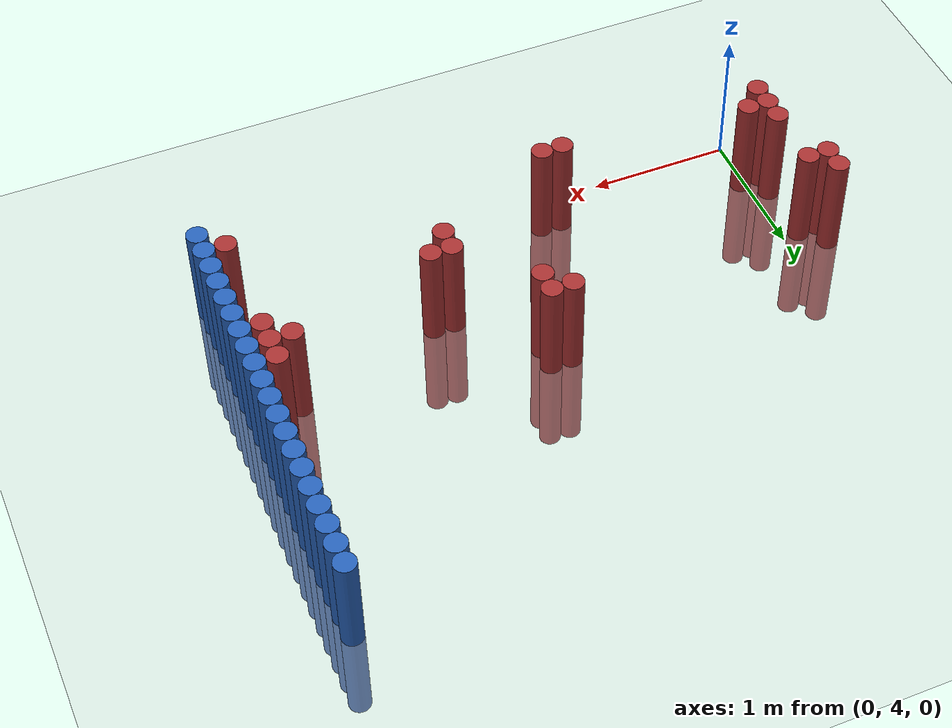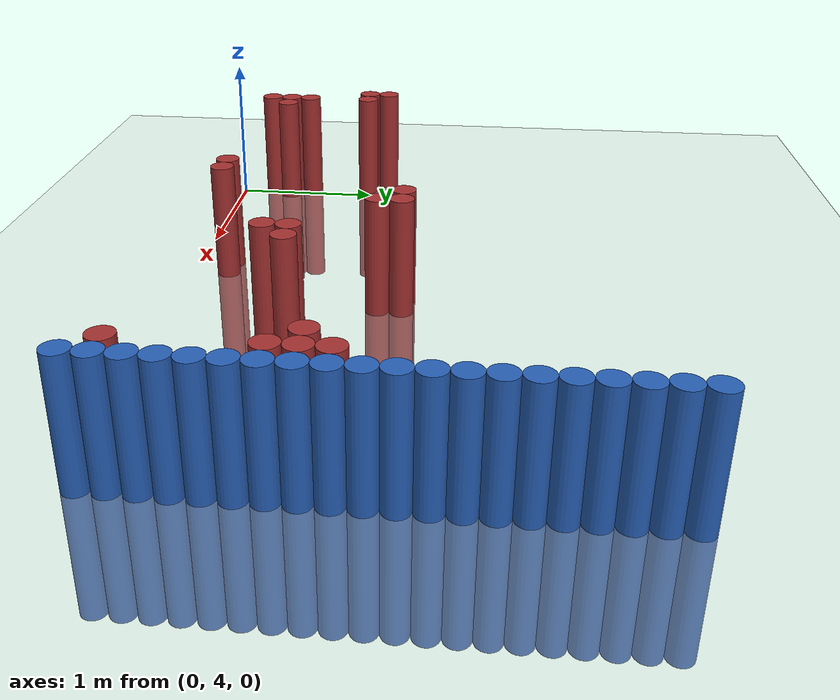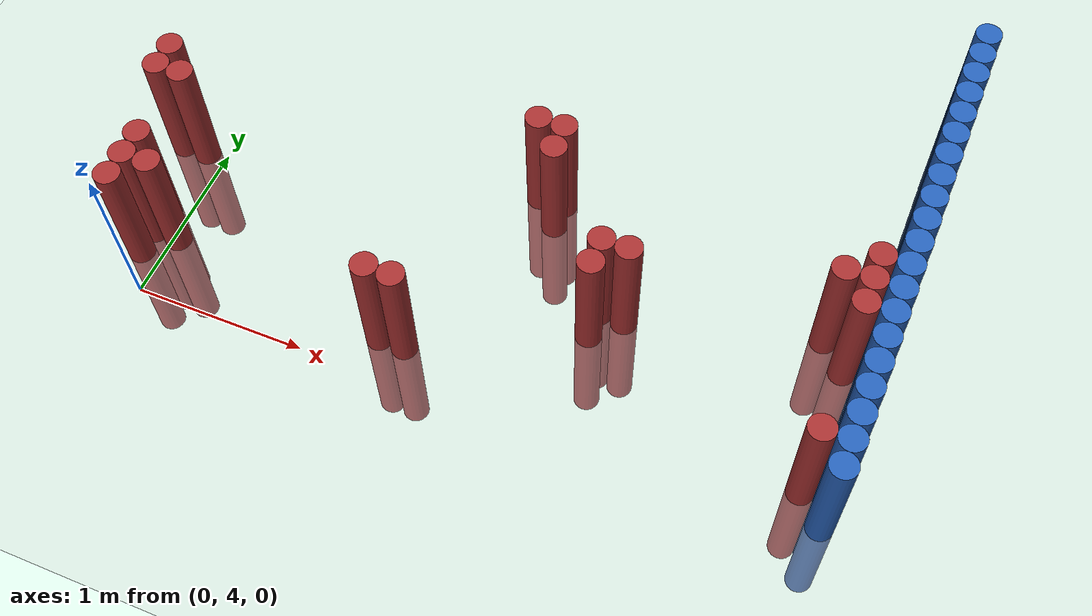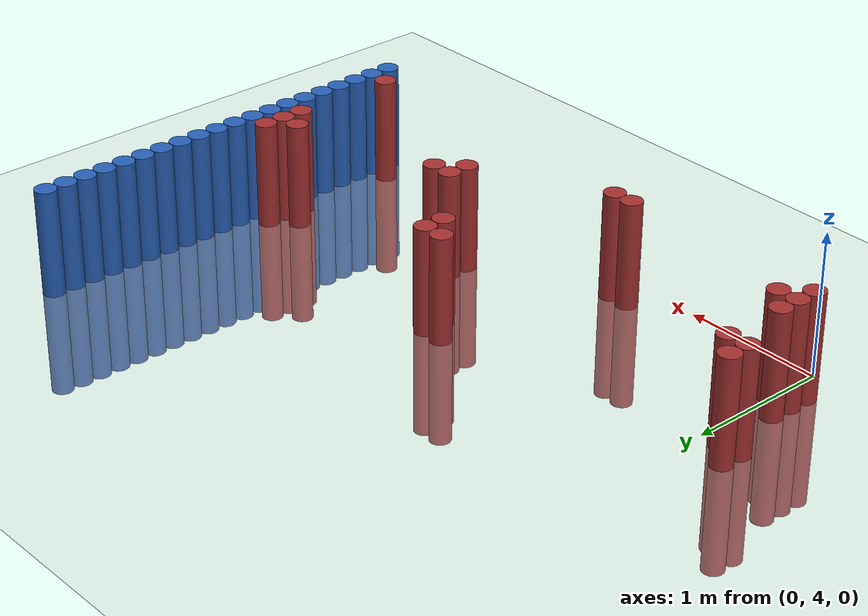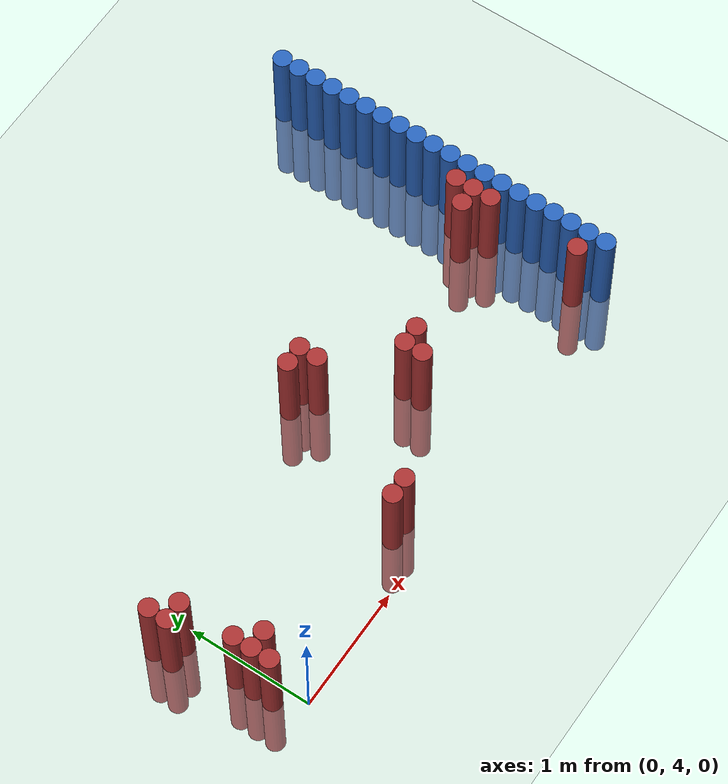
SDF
<sdf version="1.6">
 <world name="default">
  <model name="ground_plane">
   <static>1</static>
   <link name="link">
    <collision name="collision">
     <geometry><plane><normal>0 0 1</normal><size>100 100</size></plane></geometry>
     <surface><friction><ode><mu>100</mu><mu2>50</mu2></ode></friction></surface>
    </collision>
    <visual name="visual">
     <cast_shadows>0</cast_shadows>
     <geometry><plane><normal>0 0 1</normal><size>100 100</size></plane></geometry>
     <material>
      <script><uri>file://media/materials/scripts/gazebo.material</uri><name>Gazebo/Grey</name></script>
     </material>
    </visual>
   </link>
  </model>
  <model name="unit_cylinder_168">
   <static>1</static>
   <pose>3.925000 4.075000 0.000000 0.000000 0.000000 0.000000</pose>
   <link name="link">
    <inertial>
     <mass>1</mass>
     <inertia><ixx>0.145833</ixx><ixy>0</ixy><ixz>0</ixz><iyy>0.145833</iyy><iyz>0</iyz><izz>0.125</izz></inertia>
    </inertial>
    <collision name="collision">
     <geometry><cylinder><radius>0.075000</radius><length>1.5</length></cylinder></geometry>
    </collision>
    <visual name="visual">
     <geometry><cylinder><radius>0.075000</radius><length>1.5</length></cylinder></geometry>
     <material>
      <ambient>0.152000 0.379000 0.720000 1</ambient>
      <diffuse>0.152000 0.379000 0.720000 1</diffuse>
     </material>
     <material>
      <script><name>Gazebo/Grey</name><uri>file://media/materials/scripts/gazebo.material</uri></script>
     </material>
    </visual>
   </link>
  </model>
  <model name="unit_cylinder_170">
   <static>1</static>
   <pose>3.925000 4.225000 0.000000 0.000000 0.000000 0.000000</pose>
   <link name="link">
    <inertial>
     <mass>1</mass>
     <inertia><ixx>0.145833</ixx><ixy>0</ixy><ixz>0</ixz><iyy>0.145833</iyy><iyz>0</iyz><izz>0.125</izz></inertia>
    </inertial>
    <collision name="collision">
     <geometry><cylinder><radius>0.075000</radius><length>1.5</length></cylinder></geometry>
    </collision>
    <visual name="visual">
     <geometry><cylinder><radius>0.075000</radius><length>1.5</length></cylinder></geometry>
     <material>
      <ambient>0.152000 0.379000 0.720000 1</ambient>
      <diffuse>0.152000 0.379000 0.720000 1</diffuse>
     </material>
     <material>
      <script><name>Gazebo/Grey</name><uri>file://media/materials/scripts/gazebo.material</uri></script>
     </material>
    </visual>
   </link>
  </model>
  <model name="unit_cylinder_172">
   <static>1</static>
   <pose>3.925000 4.375000 0.000000 0.000000 0.000000 0.000000</pose>
   <link name="link">
    <inertial>
     <mass>1</mass>
     <inertia><ixx>0.145833</ixx><ixy>0</ixy><ixz>0</ixz><iyy>0.145833</iyy><iyz>0</iyz><izz>0.125</izz></inertia>
    </inertial>
    <collision name="collision">
     <geometry><cylinder><radius>0.075000</radius><length>1.5</length></cylinder></geometry>
    </collision>
    <visual name="visual">
     <geometry><cylinder><radius>0.075000</radius><length>1.5</length></cylinder></geometry>
     <material>
      <ambient>0.152000 0.379000 0.720000 1</ambient>
      <diffuse>0.152000 0.379000 0.720000 1</diffuse>
     </material>
     <material>
      <script><name>Gazebo/Grey</name><uri>file://media/materials/scripts/gazebo.material</uri></script>
     </material>
    </visual>
   </link>
  </model>
  <model name="unit_cylinder_174">
   <static>1</static>
   <pose>3.925000 4.525000 0.000000 0.000000 0.000000 0.000000</pose>
   <link name="link">
    <inertial>
     <mass>1</mass>
     <inertia><ixx>0.145833</ixx><ixy>0</ixy><ixz>0</ixz><iyy>0.145833</iyy><iyz>0</iyz><izz>0.125</izz></inertia>
    </inertial>
    <collision name="collision">
     <geometry><cylinder><radius>0.075000</radius><length>1.5</length></cylinder></geometry>
    </collision>
    <visual name="visual">
     <geometry><cylinder><radius>0.075000</radius><length>1.5</length></cylinder></geometry>
     <material>
      <ambient>0.152000 0.379000 0.720000 1</ambient>
      <diffuse>0.152000 0.379000 0.720000 1</diffuse>
     </material>
     <material>
      <script><name>Gazebo/Grey</name><uri>file://media/materials/scripts/gazebo.material</uri></script>
     </material>
    </visual>
   </link>
  </model>
  <model name="unit_cylinder_176">
   <static>1</static>
   <pose>3.925000 4.675000 0.000000 0.000000 0.000000 0.000000</pose>
   <link name="link">
    <inertial>
     <mass>1</mass>
     <inertia><ixx>0.145833</ixx><ixy>0</ixy><ixz>0</ixz><iyy>0.145833</iyy><iyz>0</iyz><izz>0.125</izz></inertia>
    </inertial>
    <collision name="collision">
     <geometry><cylinder><radius>0.075000</radius><length>1.5</length></cylinder></geometry>
    </collision>
    <visual name="visual">
     <geometry><cylinder><radius>0.075000</radius><length>1.5</length></cylinder></geometry>
     <material>
      <ambient>0.152000 0.379000 0.720000 1</ambient>
      <diffuse>0.152000 0.379000 0.720000 1</diffuse>
     </material>
     <material>
      <script><name>Gazebo/Grey</name><uri>file://media/materials/scripts/gazebo.material</uri></script>
     </material>
    </visual>
   </link>
  </model>
  <model name="unit_cylinder_178">
   <static>1</static>
   <pose>3.925000 4.825000 0.000000 0.000000 0.000000 0.000000</pose>
   <link name="link">
    <inertial>
     <mass>1</mass>
     <inertia><ixx>0.145833</ixx><ixy>0</ixy><ixz>0</ixz><iyy>0.145833</iyy><iyz>0</iyz><izz>0.125</izz></inertia>
    </inertial>
    <collision name="collision">
     <geometry><cylinder><radius>0.075000</radius><length>1.5</length></cylinder></geometry>
    </collision>
    <visual name="visual">
     <geometry><cylinder><radius>0.075000</radius><length>1.5</length></cylinder></geometry>
     <material>
      <ambient>0.152000 0.379000 0.720000 1</ambient>
      <diffuse>0.152000 0.379000 0.720000 1</diffuse>
     </material>
     <material>
      <script><name>Gazebo/Grey</name><uri>file://media/materials/scripts/gazebo.material</uri></script>
     </material>
    </visual>
   </link>
  </model>
  <model name="unit_cylinder_180">
   <static>1</static>
   <pose>3.925000 4.975000 0.000000 0.000000 0.000000 0.000000</pose>
   <link name="link">
    <inertial>
     <mass>1</mass>
     <inertia><ixx>0.145833</ixx><ixy>0</ixy><ixz>0</ixz><iyy>0.145833</iyy><iyz>0</iyz><izz>0.125</izz></inertia>
    </inertial>
    <collision name="collision">
     <geometry><cylinder><radius>0.075000</radius><length>1.5</length></cylinder></geometry>
    </collision>
    <visual name="visual">
     <geometry><cylinder><radius>0.075000</radius><length>1.5</length></cylinder></geometry>
     <material>
      <ambient>0.152000 0.379000 0.720000 1</ambient>
      <diffuse>0.152000 0.379000 0.720000 1</diffuse>
     </material>
     <material>
      <script><name>Gazebo/Grey</name><uri>file://media/materials/scripts/gazebo.material</uri></script>
     </material>
    </visual>
   </link>
  </model>
  <model name="unit_cylinder_182">
   <static>1</static>
   <pose>3.925000 5.125000 0.000000 0.000000 0.000000 0.000000</pose>
   <link name="link">
    <inertial>
     <mass>1</mass>
     <inertia><ixx>0.145833</ixx><ixy>0</ixy><ixz>0</ixz><iyy>0.145833</iyy><iyz>0</iyz><izz>0.125</izz></inertia>
    </inertial>
    <collision name="collision">
     <geometry><cylinder><radius>0.075000</radius><length>1.5</length></cylinder></geometry>
    </collision>
    <visual name="visual">
     <geometry><cylinder><radius>0.075000</radius><length>1.5</length></cylinder></geometry>
     <material>
      <ambient>0.152000 0.379000 0.720000 1</ambient>
      <diffuse>0.152000 0.379000 0.720000 1</diffuse>
     </material>
     <material>
      <script><name>Gazebo/Grey</name><uri>file://media/materials/scripts/gazebo.material</uri></script>
     </material>
    </visual>
   </link>
  </model>
  <model name="unit_cylinder_184">
   <static>1</static>
   <pose>3.925000 5.275000 0.000000 0.000000 0.000000 0.000000</pose>
   <link name="link">
    <inertial>
     <mass>1</mass>
     <inertia><ixx>0.145833</ixx><ixy>0</ixy><ixz>0</ixz><iyy>0.145833</iyy><iyz>0</iyz><izz>0.125</izz></inertia>
    </inertial>
    <collision name="collision">
     <geometry><cylinder><radius>0.075000</radius><length>1.5</length></cylinder></geometry>
    </collision>
    <visual name="visual">
     <geometry><cylinder><radius>0.075000</radius><length>1.5</length></cylinder></geometry>
     <material>
      <ambient>0.152000 0.379000 0.720000 1</ambient>
      <diffuse>0.152000 0.379000 0.720000 1</diffuse>
     </material>
     <material>
      <script><name>Gazebo/Grey</name><uri>file://media/materials/scripts/gazebo.material</uri></script>
     </material>
    </visual>
   </link>
  </model>
  <model name="unit_cylinder_186">
   <static>1</static>
   <pose>3.925000 5.425000 0.000000 0.000000 0.000000 0.000000</pose>
   <link name="link">
    <inertial>
     <mass>1</mass>
     <inertia><ixx>0.145833</ixx><ixy>0</ixy><ixz>0</ixz><iyy>0.145833</iyy><iyz>0</iyz><izz>0.125</izz></inertia>
    </inertial>
    <collision name="collision">
     <geometry><cylinder><radius>0.075000</radius><length>1.5</length></cylinder></geometry>
    </collision>
    <visual name="visual">
     <geometry><cylinder><radius>0.075000</radius><length>1.5</length></cylinder></geometry>
     <material>
      <ambient>0.152000 0.379000 0.720000 1</ambient>
      <diffuse>0.152000 0.379000 0.720000 1</diffuse>
     </material>
     <material>
      <script><name>Gazebo/Grey</name><uri>file://media/materials/scripts/gazebo.material</uri></script>
     </material>
    </visual>
   </link>
  </model>
  <model name="unit_cylinder_188">
   <static>1</static>
   <pose>3.925000 5.575000 0.000000 0.000000 0.000000 0.000000</pose>
   <link name="link">
    <inertial>
     <mass>1</mass>
     <inertia><ixx>0.145833</ixx><ixy>0</ixy><ixz>0</ixz><iyy>0.145833</iyy><iyz>0</iyz><izz>0.125</izz></inertia>
    </inertial>
    <collision name="collision">
     <geometry><cylinder><radius>0.075000</radius><length>1.5</length></cylinder></geometry>
    </collision>
    <visual name="visual">
     <geometry><cylinder><radius>0.075000</radius><length>1.5</length></cylinder></geometry>
     <material>
      <ambient>0.152000 0.379000 0.720000 1</ambient>
      <diffuse>0.152000 0.379000 0.720000 1</diffuse>
     </material>
     <material>
      <script><name>Gazebo/Grey</name><uri>file://media/materials/scripts/gazebo.material</uri></script>
     </material>
    </visual>
   </link>
  </model>
  <model name="unit_cylinder_190">
   <static>1</static>
   <pose>3.925000 5.725000 0.000000 0.000000 0.000000 0.000000</pose>
   <link name="link">
    <inertial>
     <mass>1</mass>
     <inertia><ixx>0.145833</ixx><ixy>0</ixy><ixz>0</ixz><iyy>0.145833</iyy><iyz>0</iyz><izz>0.125</izz></inertia>
    </inertial>
    <collision name="collision">
     <geometry><cylinder><radius>0.075000</radius><length>1.5</length></cylinder></geometry>
    </collision>
    <visual name="visual">
     <geometry><cylinder><radius>0.075000</radius><length>1.5</length></cylinder></geometry>
     <material>
      <ambient>0.152000 0.379000 0.720000 1</ambient>
      <diffuse>0.152000 0.379000 0.720000 1</diffuse>
     </material>
     <material>
      <script><name>Gazebo/Grey</name><uri>file://media/materials/scripts/gazebo.material</uri></script>
     </material>
    </visual>
   </link>
  </model>
  <model name="unit_cylinder_192">
   <static>1</static>
   <pose>3.925000 5.875000 0.000000 0.000000 0.000000 0.000000</pose>
   <link name="link">
    <inertial>
     <mass>1</mass>
     <inertia><ixx>0.145833</ixx><ixy>0</ixy><ixz>0</ixz><iyy>0.145833</iyy><iyz>0</iyz><izz>0.125</izz></inertia>
    </inertial>
    <collision name="collision">
     <geometry><cylinder><radius>0.075000</radius><length>1.5</length></cylinder></geometry>
    </collision>
    <visual name="visual">
     <geometry><cylinder><radius>0.075000</radius><length>1.5</length></cylinder></geometry>
     <material>
      <ambient>0.152000 0.379000 0.720000 1</ambient>
      <diffuse>0.152000 0.379000 0.720000 1</diffuse>
     </material>
     <material>
      <script><name>Gazebo/Grey</name><uri>file://media/materials/scripts/gazebo.material</uri></script>
     </material>
    </visual>
   </link>
  </model>
  <model name="unit_cylinder_194">
   <static>1</static>
   <pose>3.925000 6.025000 0.000000 0.000000 0.000000 0.000000</pose>
   <link name="link">
    <inertial>
     <mass>1</mass>
     <inertia><ixx>0.145833</ixx><ixy>0</ixy><ixz>0</ixz><iyy>0.145833</iyy><iyz>0</iyz><izz>0.125</izz></inertia>
    </inertial>
    <collision name="collision">
     <geometry><cylinder><radius>0.075000</radius><length>1.5</length></cylinder></geometry>
    </collision>
    <visual name="visual">
     <geometry><cylinder><radius>0.075000</radius><length>1.5</length></cylinder></geometry>
     <material>
      <ambient>0.152000 0.379000 0.720000 1</ambient>
      <diffuse>0.152000 0.379000 0.720000 1</diffuse>
     </material>
     <material>
      <script><name>Gazebo/Grey</name><uri>file://media/materials/scripts/gazebo.material</uri></script>
     </material>
    </visual>
   </link>
  </model>
  <model name="unit_cylinder_196">
   <static>1</static>
   <pose>3.925000 6.175000 0.000000 0.000000 0.000000 0.000000</pose>
   <link name="link">
    <inertial>
     <mass>1</mass>
     <inertia><ixx>0.145833</ixx><ixy>0</ixy><ixz>0</ixz><iyy>0.145833</iyy><iyz>0</iyz><izz>0.125</izz></inertia>
    </inertial>
    <collision name="collision">
     <geometry><cylinder><radius>0.075000</radius><length>1.5</length></cylinder></geometry>
    </collision>
    <visual name="visual">
     <geometry><cylinder><radius>0.075000</radius><length>1.5</length></cylinder></geometry>
     <material>
      <ambient>0.152000 0.379000 0.720000 1</ambient>
      <diffuse>0.152000 0.379000 0.720000 1</diffuse>
     </material>
     <material>
      <script><name>Gazebo/Grey</name><uri>file://media/materials/scripts/gazebo.material</uri></script>
     </material>
    </visual>
   </link>
  </model>
  <model name="unit_cylinder_198">
   <static>1</static>
   <pose>3.925000 6.325000 0.000000 0.000000 0.000000 0.000000</pose>
   <link name="link">
    <inertial>
     <mass>1</mass>
     <inertia><ixx>0.145833</ixx><ixy>0</ixy><ixz>0</ixz><iyy>0.145833</iyy><iyz>0</iyz><izz>0.125</izz></inertia>
    </inertial>
    <collision name="collision">
     <geometry><cylinder><radius>0.075000</radius><length>1.5</length></cylinder></geometry>
    </collision>
    <visual name="visual">
     <geometry><cylinder><radius>0.075000</radius><length>1.5</length></cylinder></geometry>
     <material>
      <ambient>0.152000 0.379000 0.720000 1</ambient>
      <diffuse>0.152000 0.379000 0.720000 1</diffuse>
     </material>
     <material>
      <script><name>Gazebo/Grey</name><uri>file://media/materials/scripts/gazebo.material</uri></script>
     </material>
    </visual>
   </link>
  </model>
  <model name="unit_cylinder_200">
   <static>1</static>
   <pose>3.925000 6.475000 0.000000 0.000000 0.000000 0.000000</pose>
   <link name="link">
    <inertial>
     <mass>1</mass>
     <inertia><ixx>0.145833</ixx><ixy>0</ixy><ixz>0</ixz><iyy>0.145833</iyy><iyz>0</iyz><izz>0.125</izz></inertia>
    </inertial>
    <collision name="collision">
     <geometry><cylinder><radius>0.075000</radius><length>1.5</length></cylinder></geometry>
    </collision>
    <visual name="visual">
     <geometry><cylinder><radius>0.075000</radius><length>1.5</length></cylinder></geometry>
     <material>
      <ambient>0.152000 0.379000 0.720000 1</ambient>
      <diffuse>0.152000 0.379000 0.720000 1</diffuse>
     </material>
     <material>
      <script><name>Gazebo/Grey</name><uri>file://media/materials/scripts/gazebo.material</uri></script>
     </material>
    </visual>
   </link>
  </model>
  <model name="unit_cylinder_202">
   <static>1</static>
   <pose>3.925000 6.625000 0.000000 0.000000 0.000000 0.000000</pose>
   <link name="link">
    <inertial>
     <mass>1</mass>
     <inertia><ixx>0.145833</ixx><ixy>0</ixy><ixz>0</ixz><iyy>0.145833</iyy><iyz>0</iyz><izz>0.125</izz></inertia>
    </inertial>
    <collision name="collision">
     <geometry><cylinder><radius>0.075000</radius><length>1.5</length></cylinder></geometry>
    </collision>
    <visual name="visual">
     <geometry><cylinder><radius>0.075000</radius><length>1.5</length></cylinder></geometry>
     <material>
      <ambient>0.152000 0.379000 0.720000 1</ambient>
      <diffuse>0.152000 0.379000 0.720000 1</diffuse>
     </material>
     <material>
      <script><name>Gazebo/Grey</name><uri>file://media/materials/scripts/gazebo.material</uri></script>
     </material>
    </visual>
   </link>
  </model>
  <model name="unit_cylinder_204">
   <static>1</static>
   <pose>3.925000 6.775000 0.000000 0.000000 0.000000 0.000000</pose>
   <link name="link">
    <inertial>
     <mass>1</mass>
     <inertia><ixx>0.145833</ixx><ixy>0</ixy><ixz>0</ixz><iyy>0.145833</iyy><iyz>0</iyz><izz>0.125</izz></inertia>
    </inertial>
    <collision name="collision">
     <geometry><cylinder><radius>0.075000</radius><length>1.5</length></cylinder></geometry>
    </collision>
    <visual name="visual">
     <geometry><cylinder><radius>0.075000</radius><length>1.5</length></cylinder></geometry>
     <material>
      <ambient>0.152000 0.379000 0.720000 1</ambient>
      <diffuse>0.152000 0.379000 0.720000 1</diffuse>
     </material>
     <material>
      <script><name>Gazebo/Grey</name><uri>file://media/materials/scripts/gazebo.material</uri></script>
     </material>
    </visual>
   </link>
  </model>
  <model name="unit_cylinder_206">
   <static>1</static>
   <pose>3.925000 6.925000 0.000000 0.000000 0.000000 0.000000</pose>
   <link name="link">
    <inertial>
     <mass>1</mass>
     <inertia><ixx>0.145833</ixx><ixy>0</ixy><ixz>0</ixz><iyy>0.145833</iyy><iyz>0</iyz><izz>0.125</izz></inertia>
    </inertial>
    <collision name="collision">
     <geometry><cylinder><radius>0.075000</radius><length>1.5</length></cylinder></geometry>
    </collision>
    <visual name="visual">
     <geometry><cylinder><radius>0.075000</radius><length>1.5</length></cylinder></geometry>
     <material>
      <ambient>0.152000 0.379000 0.720000 1</ambient>
      <diffuse>0.152000 0.379000 0.720000 1</diffuse>
     </material>
     <material>
      <script><name>Gazebo/Grey</name><uri>file://media/materials/scripts/gazebo.material</uri></script>
     </material>
    </visual>
   </link>
  </model>
  <model name="unit_cylinder_381">
   <static>1</static>
   <pose>-0.275000 4.975000 0.000000 0.000000 0.000000 0.000000</pose>
   <link name="link">
    <inertial>
     <mass>1</mass>
     <inertia><ixx>0.145833</ixx><ixy>0</ixy><ixz>0</ixz><iyy>0.145833</iyy><iyz>0</iyz><izz>0.125</izz></inertia>
    </inertial>
    <collision name="collision">
     <geometry><cylinder><radius>0.075000</radius><length>1.5</length></cylinder></geometry>
    </collision>
    <visual name="visual">
     <geometry><cylinder><radius>0.075000</radius><length>1.5</length></cylinder></geometry>
     <material>
      <ambient>0.648000 0.192000 0.192000 1</ambient>
      <diffuse>0.648000 0.192000 0.192000 1</diffuse>
     </material>
     <material>
      <script><name>Gazebo/Grey</name><uri>file://media/materials/scripts/gazebo.material</uri></script>
     </material>
    </visual>
   </link>
  </model>
  <model name="unit_cylinder_382">
   <static>1</static>
   <pose>-0.275000 5.125000 0.000000 0.000000 0.000000 0.000000</pose>
   <link name="link">
    <inertial>
     <mass>1</mass>
     <inertia><ixx>0.145833</ixx><ixy>0</ixy><ixz>0</ixz><iyy>0.145833</iyy><iyz>0</iyz><izz>0.125</izz></inertia>
    </inertial>
    <collision name="collision">
     <geometry><cylinder><radius>0.075000</radius><length>1.5</length></cylinder></geometry>
    </collision>
    <visual name="visual">
     <geometry><cylinder><radius>0.075000</radius><length>1.5</length></cylinder></geometry>
     <material>
      <ambient>0.648000 0.192000 0.192000 1</ambient>
      <diffuse>0.648000 0.192000 0.192000 1</diffuse>
     </material>
     <material>
      <script><name>Gazebo/Grey</name><uri>file://media/materials/scripts/gazebo.material</uri></script>
     </material>
    </visual>
   </link>
  </model>
  <model name="unit_cylinder_384">
   <static>1</static>
   <pose>-0.125000 4.225000 0.000000 0.000000 0.000000 0.000000</pose>
   <link name="link">
    <inertial>
     <mass>1</mass>
     <inertia><ixx>0.145833</ixx><ixy>0</ixy><ixz>0</ixz><iyy>0.145833</iyy><iyz>0</iyz><izz>0.125</izz></inertia>
    </inertial>
    <collision name="collision">
     <geometry><cylinder><radius>0.075000</radius><length>1.5</length></cylinder></geometry>
    </collision>
    <visual name="visual">
     <geometry><cylinder><radius>0.075000</radius><length>1.5</length></cylinder></geometry>
     <material>
      <ambient>0.648000 0.192000 0.192000 1</ambient>
      <diffuse>0.648000 0.192000 0.192000 1</diffuse>
     </material>
     <material>
      <script><name>Gazebo/Grey</name><uri>file://media/materials/scripts/gazebo.material</uri></script>
     </material>
    </visual>
   </link>
  </model>
  <model name="unit_cylinder_385">
   <static>1</static>
   <pose>-0.125000 4.375000 0.000000 0.000000 0.000000 0.000000</pose>
   <link name="link">
    <inertial>
     <mass>1</mass>
     <inertia><ixx>0.145833</ixx><ixy>0</ixy><ixz>0</ixz><iyy>0.145833</iyy><iyz>0</iyz><izz>0.125</izz></inertia>
    </inertial>
    <collision name="collision">
     <geometry><cylinder><radius>0.075000</radius><length>1.5</length></cylinder></geometry>
    </collision>
    <visual name="visual">
     <geometry><cylinder><radius>0.075000</radius><length>1.5</length></cylinder></geometry>
     <material>
      <ambient>0.648000 0.192000 0.192000 1</ambient>
      <diffuse>0.648000 0.192000 0.192000 1</diffuse>
     </material>
     <material>
      <script><name>Gazebo/Grey</name><uri>file://media/materials/scripts/gazebo.material</uri></script>
     </material>
    </visual>
   </link>
  </model>
  <model name="unit_cylinder_386">
   <static>1</static>
   <pose>-0.125000 4.525000 0.000000 0.000000 0.000000 0.000000</pose>
   <link name="link">
    <inertial>
     <mass>1</mass>
     <inertia><ixx>0.145833</ixx><ixy>0</ixy><ixz>0</ixz><iyy>0.145833</iyy><iyz>0</iyz><izz>0.125</izz></inertia>
    </inertial>
    <collision name="collision">
     <geometry><cylinder><radius>0.075000</radius><length>1.5</length></cylinder></geometry>
    </collision>
    <visual name="visual">
     <geometry><cylinder><radius>0.075000</radius><length>1.5</length></cylinder></geometry>
     <material>
      <ambient>0.648000 0.192000 0.192000 1</ambient>
      <diffuse>0.648000 0.192000 0.192000 1</diffuse>
     </material>
     <material>
      <script><name>Gazebo/Grey</name><uri>file://media/materials/scripts/gazebo.material</uri></script>
     </material>
    </visual>
   </link>
  </model>
  <model name="unit_cylinder_387">
   <static>1</static>
   <pose>-0.125000 4.975000 0.000000 0.000000 0.000000 0.000000</pose>
   <link name="link">
    <inertial>
     <mass>1</mass>
     <inertia><ixx>0.145833</ixx><ixy>0</ixy><ixz>0</ixz><iyy>0.145833</iyy><iyz>0</iyz><izz>0.125</izz></inertia>
    </inertial>
    <collision name="collision">
     <geometry><cylinder><radius>0.075000</radius><length>1.5</length></cylinder></geometry>
    </collision>
    <visual name="visual">
     <geometry><cylinder><radius>0.075000</radius><length>1.5</length></cylinder></geometry>
     <material>
      <ambient>0.648000 0.192000 0.192000 1</ambient>
      <diffuse>0.648000 0.192000 0.192000 1</diffuse>
     </material>
     <material>
      <script><name>Gazebo/Grey</name><uri>file://media/materials/scripts/gazebo.material</uri></script>
     </material>
    </visual>
   </link>
  </model>
  <model name="unit_cylinder_388">
   <static>1</static>
   <pose>0.025000 4.375000 0.000000 0.000000 0.000000 0.000000</pose>
   <link name="link">
    <inertial>
     <mass>1</mass>
     <inertia><ixx>0.145833</ixx><ixy>0</ixy><ixz>0</ixz><iyy>0.145833</iyy><iyz>0</iyz><izz>0.125</izz></inertia>
    </inertial>
    <collision name="collision">
     <geometry><cylinder><radius>0.075000</radius><length>1.5</length></cylinder></geometry>
    </collision>
    <visual name="visual">
     <geometry><cylinder><radius>0.075000</radius><length>1.5</length></cylinder></geometry>
     <material>
      <ambient>0.648000 0.192000 0.192000 1</ambient>
      <diffuse>0.648000 0.192000 0.192000 1</diffuse>
     </material>
     <material>
      <script><name>Gazebo/Grey</name><uri>file://media/materials/scripts/gazebo.material</uri></script>
     </material>
    </visual>
   </link>
  </model>
  <model name="unit_cylinder_404">
   <static>1</static>
   <pose>1.375000 4.225000 0.000000 0.000000 0.000000 0.000000</pose>
   <link name="link">
    <inertial>
     <mass>1</mass>
     <inertia><ixx>0.145833</ixx><ixy>0</ixy><ixz>0</ixz><iyy>0.145833</iyy><iyz>0</iyz><izz>0.125</izz></inertia>
    </inertial>
    <collision name="collision">
     <geometry><cylinder><radius>0.075000</radius><length>1.5</length></cylinder></geometry>
    </collision>
    <visual name="visual">
     <geometry><cylinder><radius>0.075000</radius><length>1.5</length></cylinder></geometry>
     <material>
      <ambient>0.648000 0.192000 0.192000 1</ambient>
      <diffuse>0.648000 0.192000 0.192000 1</diffuse>
     </material>
     <material>
      <script><name>Gazebo/Grey</name><uri>file://media/materials/scripts/gazebo.material</uri></script>
     </material>
    </visual>
   </link>
  </model>
  <model name="unit_cylinder_409">
   <static>1</static>
   <pose>1.525000 4.225000 0.000000 0.000000 0.000000 0.000000</pose>
   <link name="link">
    <inertial>
     <mass>1</mass>
     <inertia><ixx>0.145833</ixx><ixy>0</ixy><ixz>0</ixz><iyy>0.145833</iyy><iyz>0</iyz><izz>0.125</izz></inertia>
    </inertial>
    <collision name="collision">
     <geometry><cylinder><radius>0.075000</radius><length>1.5</length></cylinder></geometry>
    </collision>
    <visual name="visual">
     <geometry><cylinder><radius>0.075000</radius><length>1.5</length></cylinder></geometry>
     <material>
      <ambient>0.648000 0.192000 0.192000 1</ambient>
      <diffuse>0.648000 0.192000 0.192000 1</diffuse>
     </material>
     <material>
      <script><name>Gazebo/Grey</name><uri>file://media/materials/scripts/gazebo.material</uri></script>
     </material>
    </visual>
   </link>
  </model>
  <model name="unit_cylinder_417">
   <static>1</static>
   <pose>1.825000 5.425000 0.000000 0.000000 0.000000 0.000000</pose>
   <link name="link">
    <inertial>
     <mass>1</mass>
     <inertia><ixx>0.145833</ixx><ixy>0</ixy><ixz>0</ixz><iyy>0.145833</iyy><iyz>0</iyz><izz>0.125</izz></inertia>
    </inertial>
    <collision name="collision">
     <geometry><cylinder><radius>0.075000</radius><length>1.5</length></cylinder></geometry>
    </collision>
    <visual name="visual">
     <geometry><cylinder><radius>0.075000</radius><length>1.5</length></cylinder></geometry>
     <material>
      <ambient>0.648000 0.192000 0.192000 1</ambient>
      <diffuse>0.648000 0.192000 0.192000 1</diffuse>
     </material>
     <material>
      <script><name>Gazebo/Grey</name><uri>file://media/materials/scripts/gazebo.material</uri></script>
     </material>
    </visual>
   </link>
  </model>
  <model name="unit_cylinder_421">
   <static>1</static>
   <pose>1.975000 5.275000 0.000000 0.000000 0.000000 0.000000</pose>
   <link name="link">
    <inertial>
     <mass>1</mass>
     <inertia><ixx>0.145833</ixx><ixy>0</ixy><ixz>0</ixz><iyy>0.145833</iyy><iyz>0</iyz><izz>0.125</izz></inertia>
    </inertial>
    <collision name="collision">
     <geometry><cylinder><radius>0.075000</radius><length>1.5</length></cylinder></geometry>
    </collision>
    <visual name="visual">
     <geometry><cylinder><radius>0.075000</radius><length>1.5</length></cylinder></geometry>
     <material>
      <ambient>0.648000 0.192000 0.192000 1</ambient>
      <diffuse>0.648000 0.192000 0.192000 1</diffuse>
     </material>
     <material>
      <script><name>Gazebo/Grey</name><uri>file://media/materials/scripts/gazebo.material</uri></script>
     </material>
    </visual>
   </link>
  </model>
  <model name="unit_cylinder_422">
   <static>1</static>
   <pose>1.975000 5.425000 0.000000 0.000000 0.000000 0.000000</pose>
   <link name="link">
    <inertial>
     <mass>1</mass>
     <inertia><ixx>0.145833</ixx><ixy>0</ixy><ixz>0</ixz><iyy>0.145833</iyy><iyz>0</iyz><izz>0.125</izz></inertia>
    </inertial>
    <collision name="collision">
     <geometry><cylinder><radius>0.075000</radius><length>1.5</length></cylinder></geometry>
    </collision>
    <visual name="visual">
     <geometry><cylinder><radius>0.075000</radius><length>1.5</length></cylinder></geometry>
     <material>
      <ambient>0.648000 0.192000 0.192000 1</ambient>
      <diffuse>0.648000 0.192000 0.192000 1</diffuse>
     </material>
     <material>
      <script><name>Gazebo/Grey</name><uri>file://media/materials/scripts/gazebo.material</uri></script>
     </material>
    </visual>
   </link>
  </model>
  <model name="unit_cylinder_426">
   <static>1</static>
   <pose>2.425000 4.675000 0.000000 0.000000 0.000000 0.000000</pose>
   <link name="link">
    <inertial>
     <mass>1</mass>
     <inertia><ixx>0.145833</ixx><ixy>0</ixy><ixz>0</ixz><iyy>0.145833</iyy><iyz>0</iyz><izz>0.125</izz></inertia>
    </inertial>
    <collision name="collision">
     <geometry><cylinder><radius>0.075000</radius><length>1.5</length></cylinder></geometry>
    </collision>
    <visual name="visual">
     <geometry><cylinder><radius>0.075000</radius><length>1.5</length></cylinder></geometry>
     <material>
      <ambient>0.648000 0.192000 0.192000 1</ambient>
      <diffuse>0.648000 0.192000 0.192000 1</diffuse>
     </material>
     <material>
      <script><name>Gazebo/Grey</name><uri>file://media/materials/scripts/gazebo.material</uri></script>
     </material>
    </visual>
   </link>
  </model>
  <model name="unit_cylinder_427">
   <static>1</static>
   <pose>2.425000 4.825000 0.000000 0.000000 0.000000 0.000000</pose>
   <link name="link">
    <inertial>
     <mass>1</mass>
     <inertia><ixx>0.145833</ixx><ixy>0</ixy><ixz>0</ixz><iyy>0.145833</iyy><iyz>0</iyz><izz>0.125</izz></inertia>
    </inertial>
    <collision name="collision">
     <geometry><cylinder><radius>0.075000</radius><length>1.5</length></cylinder></geometry>
    </collision>
    <visual name="visual">
     <geometry><cylinder><radius>0.075000</radius><length>1.5</length></cylinder></geometry>
     <material>
      <ambient>0.648000 0.192000 0.192000 1</ambient>
      <diffuse>0.648000 0.192000 0.192000 1</diffuse>
     </material>
     <material>
      <script><name>Gazebo/Grey</name><uri>file://media/materials/scripts/gazebo.material</uri></script>
     </material>
    </visual>
   </link>
  </model>
  <model name="unit_cylinder_429">
   <static>1</static>
   <pose>2.575000 4.825000 0.000000 0.000000 0.000000 0.000000</pose>
   <link name="link">
    <inertial>
     <mass>1</mass>
     <inertia><ixx>0.145833</ixx><ixy>0</ixy><ixz>0</ixz><iyy>0.145833</iyy><iyz>0</iyz><izz>0.125</izz></inertia>
    </inertial>
    <collision name="collision">
     <geometry><cylinder><radius>0.075000</radius><length>1.5</length></cylinder></geometry>
    </collision>
    <visual name="visual">
     <geometry><cylinder><radius>0.075000</radius><length>1.5</length></cylinder></geometry>
     <material>
      <ambient>0.648000 0.192000 0.192000 1</ambient>
      <diffuse>0.648000 0.192000 0.192000 1</diffuse>
     </material>
     <material>
      <script><name>Gazebo/Grey</name><uri>file://media/materials/scripts/gazebo.material</uri></script>
     </material>
    </visual>
   </link>
  </model>
  <model name="unit_cylinder_467">
   <static>1</static>
   <pose>3.625000 5.125000 0.000000 0.000000 0.000000 0.000000</pose>
   <link name="link">
    <inertial>
     <mass>1</mass>
     <inertia><ixx>0.145833</ixx><ixy>0</ixy><ixz>0</ixz><iyy>0.145833</iyy><iyz>0</iyz><izz>0.125</izz></inertia>
    </inertial>
    <collision name="collision">
     <geometry><cylinder><radius>0.075000</radius><length>1.5</length></cylinder></geometry>
    </collision>
    <visual name="visual">
     <geometry><cylinder><radius>0.075000</radius><length>1.5</length></cylinder></geometry>
     <material>
      <ambient>0.648000 0.192000 0.192000 1</ambient>
      <diffuse>0.648000 0.192000 0.192000 1</diffuse>
     </material>
     <material>
      <script><name>Gazebo/Grey</name><uri>file://media/materials/scripts/gazebo.material</uri></script>
     </material>
    </visual>
   </link>
  </model>
  <model name="unit_cylinder_494">
   <static>1</static>
   <pose>3.775000 4.225000 0.000000 0.000000 0.000000 0.000000</pose>
   <link name="link">
    <inertial>
     <mass>1</mass>
     <inertia><ixx>0.145833</ixx><ixy>0</ixy><ixz>0</ixz><iyy>0.145833</iyy><iyz>0</iyz><izz>0.125</izz></inertia>
    </inertial>
    <collision name="collision">
     <geometry><cylinder><radius>0.075000</radius><length>1.5</length></cylinder></geometry>
    </collision>
    <visual name="visual">
     <geometry><cylinder><radius>0.075000</radius><length>1.5</length></cylinder></geometry>
     <material>
      <ambient>0.648000 0.192000 0.192000 1</ambient>
      <diffuse>0.648000 0.192000 0.192000 1</diffuse>
     </material>
     <material>
      <script><name>Gazebo/Grey</name><uri>file://media/materials/scripts/gazebo.material</uri></script>
     </material>
    </visual>
   </link>
  </model>
  <model name="unit_cylinder_495">
   <static>1</static>
   <pose>3.775000 4.975000 0.000000 0.000000 0.000000 0.000000</pose>
   <link name="link">
    <inertial>
     <mass>1</mass>
     <inertia><ixx>0.145833</ixx><ixy>0</ixy><ixz>0</ixz><iyy>0.145833</iyy><iyz>0</iyz><izz>0.125</izz></inertia>
    </inertial>
    <collision name="collision">
     <geometry><cylinder><radius>0.075000</radius><length>1.5</length></cylinder></geometry>
    </collision>
    <visual name="visual">
     <geometry><cylinder><radius>0.075000</radius><length>1.5</length></cylinder></geometry>
     <material>
      <ambient>0.648000 0.192000 0.192000 1</ambient>
      <diffuse>0.648000 0.192000 0.192000 1</diffuse>
     </material>
     <material>
      <script><name>Gazebo/Grey</name><uri>file://media/materials/scripts/gazebo.material</uri></script>
     </material>
    </visual>
   </link>
  </model>
  <model name="unit_cylinder_496">
   <static>1</static>
   <pose>3.775000 5.125000 0.000000 0.000000 0.000000 0.000000</pose>
   <link name="link">
    <inertial>
     <mass>1</mass>
     <inertia><ixx>0.145833</ixx><ixy>0</ixy><ixz>0</ixz><iyy>0.145833</iyy><iyz>0</iyz><izz>0.125</izz></inertia>
    </inertial>
    <collision name="collision">
     <geometry><cylinder><radius>0.075000</radius><length>1.5</length></cylinder></geometry>
    </collision>
    <visual name="visual">
     <geometry><cylinder><radius>0.075000</radius><length>1.5</length></cylinder></geometry>
     <material>
      <ambient>0.648000 0.192000 0.192000 1</ambient>
      <diffuse>0.648000 0.192000 0.192000 1</diffuse>
     </material>
     <material>
      <script><name>Gazebo/Grey</name><uri>file://media/materials/scripts/gazebo.material</uri></script>
     </material>
    </visual>
   </link>
  </model>
  <model name="unit_cylinder_497">
   <static>1</static>
   <pose>3.775000 5.275000 0.000000 0.000000 0.000000 0.000000</pose>
   <link name="link">
    <inertial>
     <mass>1</mass>
     <inertia><ixx>0.145833</ixx><ixy>0</ixy><ixz>0</ixz><iyy>0.145833</iyy><iyz>0</iyz><izz>0.125</izz></inertia>
    </inertial>
    <collision name="collision">
     <geometry><cylinder><radius>0.075000</radius><length>1.5</length></cylinder></geometry>
    </collision>
    <visual name="visual">
     <geometry><cylinder><radius>0.075000</radius><length>1.5</length></cylinder></geometry>
     <material>
      <ambient>0.648000 0.192000 0.192000 1</ambient>
      <diffuse>0.648000 0.192000 0.192000 1</diffuse>
     </material>
     <material>
      <script><name>Gazebo/Grey</name><uri>file://media/materials/scripts/gazebo.material</uri></script>
     </material>
    </visual>
   </link>
  </model>
  <model name="unit_cylinder_538">
   <static>1</static>
   <pose>3.925000 4.075000 0.000000 0.000000 0.000000 0.000000</pose>
   <link name="link">
    <inertial>
     <mass>1</mass>
     <inertia><ixx>0.145833</ixx><ixy>0</ixy><ixz>0</ixz><iyy>0.145833</iyy><iyz>0</iyz><izz>0.125</izz></inertia>
    </inertial>
    <collision name="collision">
     <geometry><cylinder><radius>0.075000</radius><length>1.5</length></cylinder></geometry>
    </collision>
    <visual name="visual">
     <geometry><cylinder><radius>0.075000</radius><length>1.5</length></cylinder></geometry>
     <material>
      <ambient>0.152000 0.379000 0.720000 1</ambient>
      <diffuse>0.152000 0.379000 0.720000 1</diffuse>
     </material>
     <material>
      <script><name>Gazebo/Grey</name><uri>file://media/materials/scripts/gazebo.material</uri></script>
     </material>
    </visual>
   </link>
  </model>
  <model name="unit_cylinder_539">
   <static>1</static>
   <pose>3.925000 4.225000 0.000000 0.000000 0.000000 0.000000</pose>
   <link name="link">
    <inertial>
     <mass>1</mass>
     <inertia><ixx>0.145833</ixx><ixy>0</ixy><ixz>0</ixz><iyy>0.145833</iyy><iyz>0</iyz><izz>0.125</izz></inertia>
    </inertial>
    <collision name="collision">
     <geometry><cylinder><radius>0.075000</radius><length>1.5</length></cylinder></geometry>
    </collision>
    <visual name="visual">
     <geometry><cylinder><radius>0.075000</radius><length>1.5</length></cylinder></geometry>
     <material>
      <ambient>0.152000 0.379000 0.720000 1</ambient>
      <diffuse>0.152000 0.379000 0.720000 1</diffuse>
     </material>
     <material>
      <script><name>Gazebo/Grey</name><uri>file://media/materials/scripts/gazebo.material</uri></script>
     </material>
    </visual>
   </link>
  </model>
  <model name="unit_cylinder_540">
   <static>1</static>
   <pose>3.925000 4.375000 0.000000 0.000000 0.000000 0.000000</pose>
   <link name="link">
    <inertial>
     <mass>1</mass>
     <inertia><ixx>0.145833</ixx><ixy>0</ixy><ixz>0</ixz><iyy>0.145833</iyy><iyz>0</iyz><izz>0.125</izz></inertia>
    </inertial>
    <collision name="collision">
     <geometry><cylinder><radius>0.075000</radius><length>1.5</length></cylinder></geometry>
    </collision>
    <visual name="visual">
     <geometry><cylinder><radius>0.075000</radius><length>1.5</length></cylinder></geometry>
     <material>
      <ambient>0.152000 0.379000 0.720000 1</ambient>
      <diffuse>0.152000 0.379000 0.720000 1</diffuse>
     </material>
     <material>
      <script><name>Gazebo/Grey</name><uri>file://media/materials/scripts/gazebo.material</uri></script>
     </material>
    </visual>
   </link>
  </model>
  <model name="unit_cylinder_541">
   <static>1</static>
   <pose>3.925000 4.525000 0.000000 0.000000 0.000000 0.000000</pose>
   <link name="link">
    <inertial>
     <mass>1</mass>
     <inertia><ixx>0.145833</ixx><ixy>0</ixy><ixz>0</ixz><iyy>0.145833</iyy><iyz>0</iyz><izz>0.125</izz></inertia>
    </inertial>
    <collision name="collision">
     <geometry><cylinder><radius>0.075000</radius><length>1.5</length></cylinder></geometry>
    </collision>
    <visual name="visual">
     <geometry><cylinder><radius>0.075000</radius><length>1.5</length></cylinder></geometry>
     <material>
      <ambient>0.152000 0.379000 0.720000 1</ambient>
      <diffuse>0.152000 0.379000 0.720000 1</diffuse>
     </material>
     <material>
      <script><name>Gazebo/Grey</name><uri>file://media/materials/scripts/gazebo.material</uri></script>
     </material>
    </visual>
   </link>
  </model>
  <model name="unit_cylinder_542">
   <static>1</static>
   <pose>3.925000 4.675000 0.000000 0.000000 0.000000 0.000000</pose>
   <link name="link">
    <inertial>
     <mass>1</mass>
     <inertia><ixx>0.145833</ixx><ixy>0</ixy><ixz>0</ixz><iyy>0.145833</iyy><iyz>0</iyz><izz>0.125</izz></inertia>
    </inertial>
    <collision name="collision">
     <geometry><cylinder><radius>0.075000</radius><length>1.5</length></cylinder></geometry>
    </collision>
    <visual name="visual">
     <geometry><cylinder><radius>0.075000</radius><length>1.5</length></cylinder></geometry>
     <material>
      <ambient>0.152000 0.379000 0.720000 1</ambient>
      <diffuse>0.152000 0.379000 0.720000 1</diffuse>
     </material>
     <material>
      <script><name>Gazebo/Grey</name><uri>file://media/materials/scripts/gazebo.material</uri></script>
     </material>
    </visual>
   </link>
  </model>
  <model name="unit_cylinder_543">
   <static>1</static>
   <pose>3.925000 4.825000 0.000000 0.000000 0.000000 0.000000</pose>
   <link name="link">
    <inertial>
     <mass>1</mass>
     <inertia><ixx>0.145833</ixx><ixy>0</ixy><ixz>0</ixz><iyy>0.145833</iyy><iyz>0</iyz><izz>0.125</izz></inertia>
    </inertial>
    <collision name="collision">
     <geometry><cylinder><radius>0.075000</radius><length>1.5</length></cylinder></geometry>
    </collision>
    <visual name="visual">
     <geometry><cylinder><radius>0.075000</radius><length>1.5</length></cylinder></geometry>
     <material>
      <ambient>0.152000 0.379000 0.720000 1</ambient>
      <diffuse>0.152000 0.379000 0.720000 1</diffuse>
     </material>
     <material>
      <script><name>Gazebo/Grey</name><uri>file://media/materials/scripts/gazebo.material</uri></script>
     </material>
    </visual>
   </link>
  </model>
  <model name="unit_cylinder_544">
   <static>1</static>
   <pose>3.925000 4.975000 0.000000 0.000000 0.000000 0.000000</pose>
   <link name="link">
    <inertial>
     <mass>1</mass>
     <inertia><ixx>0.145833</ixx><ixy>0</ixy><ixz>0</ixz><iyy>0.145833</iyy><iyz>0</iyz><izz>0.125</izz></inertia>
    </inertial>
    <collision name="collision">
     <geometry><cylinder><radius>0.075000</radius><length>1.5</length></cylinder></geometry>
    </collision>
    <visual name="visual">
     <geometry><cylinder><radius>0.075000</radius><length>1.5</length></cylinder></geometry>
     <material>
      <ambient>0.152000 0.379000 0.720000 1</ambient>
      <diffuse>0.152000 0.379000 0.720000 1</diffuse>
     </material>
     <material>
      <script><name>Gazebo/Grey</name><uri>file://media/materials/scripts/gazebo.material</uri></script>
     </material>
    </visual>
   </link>
  </model>
  <model name="unit_cylinder_545">
   <static>1</static>
   <pose>3.925000 5.125000 0.000000 0.000000 0.000000 0.000000</pose>
   <link name="link">
    <inertial>
     <mass>1</mass>
     <inertia><ixx>0.145833</ixx><ixy>0</ixy><ixz>0</ixz><iyy>0.145833</iyy><iyz>0</iyz><izz>0.125</izz></inertia>
    </inertial>
    <collision name="collision">
     <geometry><cylinder><radius>0.075000</radius><length>1.5</length></cylinder></geometry>
    </collision>
    <visual name="visual">
     <geometry><cylinder><radius>0.075000</radius><length>1.5</length></cylinder></geometry>
     <material>
      <ambient>0.152000 0.379000 0.720000 1</ambient>
      <diffuse>0.152000 0.379000 0.720000 1</diffuse>
     </material>
     <material>
      <script><name>Gazebo/Grey</name><uri>file://media/materials/scripts/gazebo.material</uri></script>
     </material>
    </visual>
   </link>
  </model>
  <model name="unit_cylinder_546">
   <static>1</static>
   <pose>3.925000 5.275000 0.000000 0.000000 0.000000 0.000000</pose>
   <link name="link">
    <inertial>
     <mass>1</mass>
     <inertia><ixx>0.145833</ixx><ixy>0</ixy><ixz>0</ixz><iyy>0.145833</iyy><iyz>0</iyz><izz>0.125</izz></inertia>
    </inertial>
    <collision name="collision">
     <geometry><cylinder><radius>0.075000</radius><length>1.5</length></cylinder></geometry>
    </collision>
    <visual name="visual">
     <geometry><cylinder><radius>0.075000</radius><length>1.5</length></cylinder></geometry>
     <material>
      <ambient>0.152000 0.379000 0.720000 1</ambient>
      <diffuse>0.152000 0.379000 0.720000 1</diffuse>
     </material>
     <material>
      <script><name>Gazebo/Grey</name><uri>file://media/materials/scripts/gazebo.material</uri></script>
     </material>
    </visual>
   </link>
  </model>
  <model name="unit_cylinder_547">
   <static>1</static>
   <pose>3.925000 5.425000 0.000000 0.000000 0.000000 0.000000</pose>
   <link name="link">
    <inertial>
     <mass>1</mass>
     <inertia><ixx>0.145833</ixx><ixy>0</ixy><ixz>0</ixz><iyy>0.145833</iyy><iyz>0</iyz><izz>0.125</izz></inertia>
    </inertial>
    <collision name="collision">
     <geometry><cylinder><radius>0.075000</radius><length>1.5</length></cylinder></geometry>
    </collision>
    <visual name="visual">
     <geometry><cylinder><radius>0.075000</radius><length>1.5</length></cylinder></geometry>
     <material>
      <ambient>0.152000 0.379000 0.720000 1</ambient>
      <diffuse>0.152000 0.379000 0.720000 1</diffuse>
     </material>
     <material>
      <script><name>Gazebo/Grey</name><uri>file://media/materials/scripts/gazebo.material</uri></script>
     </material>
    </visual>
   </link>
  </model>
 </world>
</sdf>
